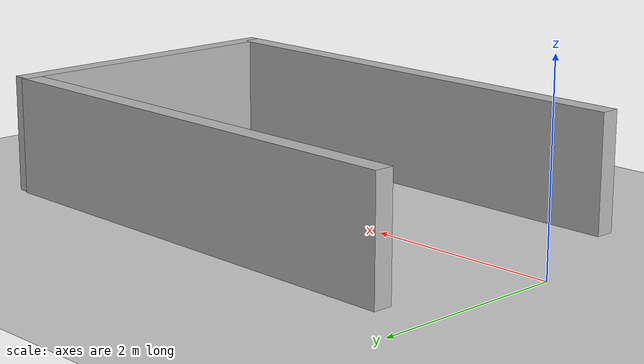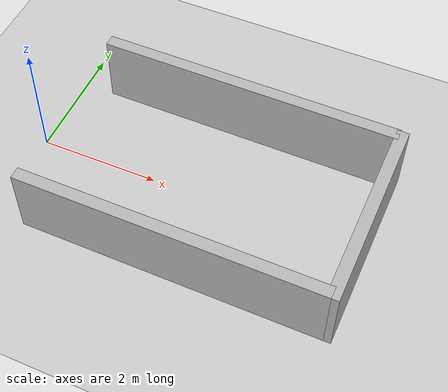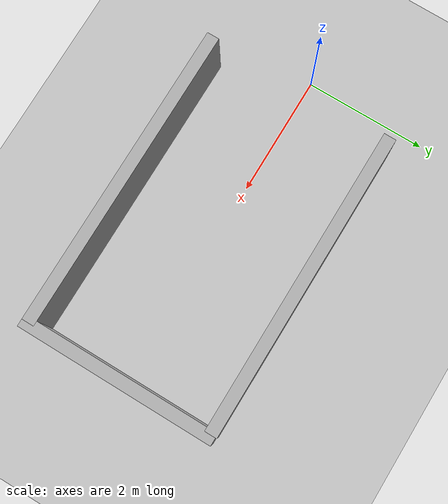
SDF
<?xml version="1.0"?>
<sdf version="1.6">
  <world name="v2-04e-maneuver-s4705">
    <gravity>0 0 -9.81</gravity>
    <physics name="v2_deterministic" type="ode">
      <max_step_size>0.002</max_step_size>
      <real_time_update_rate>500</real_time_update_rate>
    </physics>
    <include>
      <uri>model://sun</uri>
    </include>
    <include>
      <uri>model://ground_plane</uri>
    </include>
    <model name="bay-left">
      <static>true</static>
      <pose>2.990164247 1.524938049 0.600000000 0 0 -0.002992082</pose>
      <link name="link">
        <collision name="collision">
          <geometry>
            <box>
              <size>5.000000 0.200000 1.200000</size>
            </box>
          </geometry>
        </collision>
        <visual name="visual">
          <geometry>
            <box>
              <size>5.000000 0.200000 1.200000</size>
            </box>
          </geometry>
        </visual>
      </link>
    </model>
    <model name="bay-right">
      <static>true</static>
      <pose>2.998112912 -1.497478955 0.600000000 0 0 -0.002466153</pose>
      <link name="link">
        <collision name="collision">
          <geometry>
            <box>
              <size>5.000000 0.200000 1.200000</size>
            </box>
          </geometry>
        </collision>
        <visual name="visual">
          <geometry>
            <box>
              <size>5.000000 0.200000 1.200000</size>
            </box>
          </geometry>
        </visual>
      </link>
    </model>
    <model name="bay-back">
      <static>true</static>
      <pose>5.517871227 -0.002860517 0.600000000 0 0 -0.002560266</pose>
      <link name="link">
        <collision name="collision">
          <geometry>
            <box>
              <size>0.200000 3.200000 1.200000</size>
            </box>
          </geometry>
        </collision>
        <visual name="visual">
          <geometry>
            <box>
              <size>0.200000 3.200000 1.200000</size>
            </box>
          </geometry>
        </visual>
      </link>
    </model>
  </world>
</sdf>
